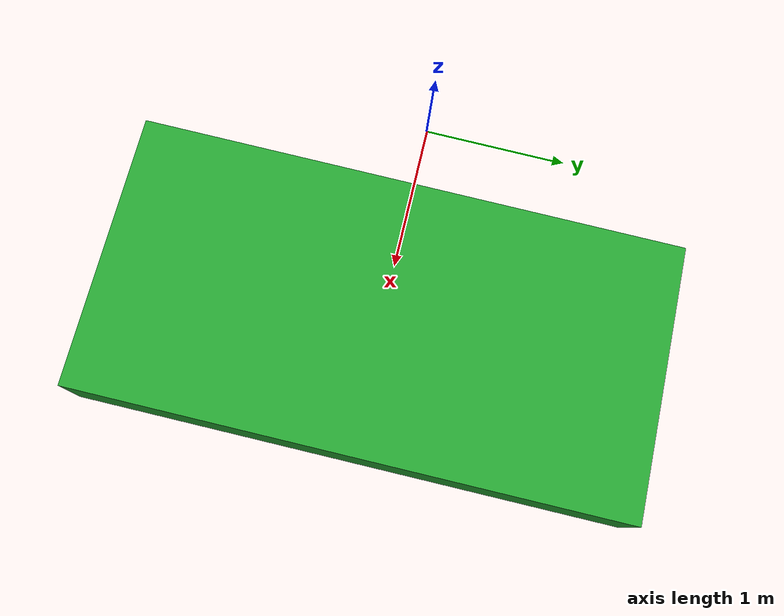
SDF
<sdf version="1.6">
    <model name="ramp">
        <static>true</static>
        <link name="link">
            <collision name="collision">
                <geometry>
                    <box>
                        <size>2 4 0.5</size>
                    </box>
                </geometry>
                <pose>0.7 0 -0.1 0 -0.08 0</pose>
            </collision>
            <visual name="visual">
                <geometry>
                    <box>
                        <size>2 4 0.5</size>
                    </box>
                </geometry>
                <material>
                    <script>
                        <uri>file://media/materials/scripts/gazebo.material</uri>
                        <name>Gazebo/Green</name>
                    </script>
                </material>
                <pose>0.7 0 -0.1 0 -0.08 0</pose>
            </visual>
            <pose>0.7 0 -0.1 0 -0.08 0</pose> <!-- Rotation for ramp angle -->
        </link>
    </model>
</sdf>
